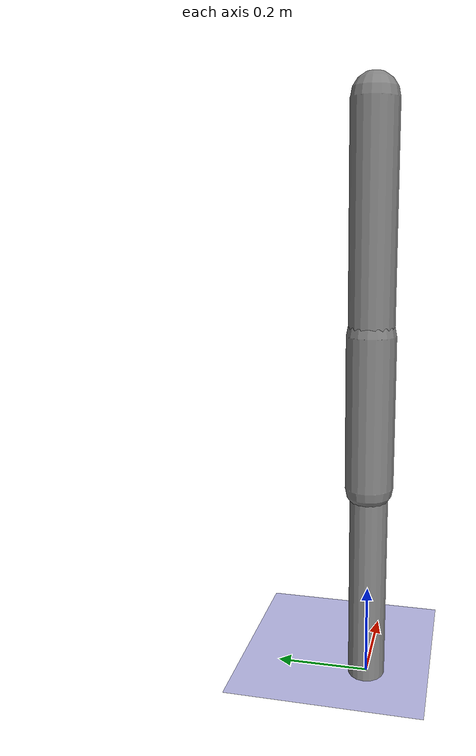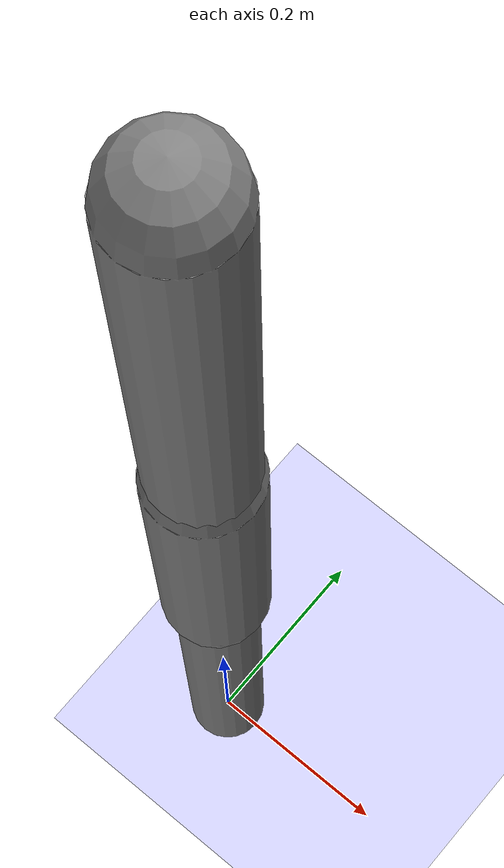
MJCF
<?xml version='1.0' encoding='UTF-8'?>
<mujoco model="robot_model">
  <worldbody>
    <light name="light" pos="0 -3 10" dir="0 0.5 -1" diffuse=".8 .8 .8" specular="0.1 0.1 0.1"/>
    <geom name="floor" type="plane" size="10.0 10.0 0.1" pos="0 0 0" rgba="0.8 0.8 1 1" contype="2" conaffinity="1"/>
    <body name="limb0" pos="0 0 0">
      <geom type="capsule" fromto="0 0 0 0 0 0.5802549618983391" size="0.04" density="803.9542594495575" contype="1" conaffinity="2"/>
      <site type="sphere" size="0.01" name="limb0_site0" pos="0 0 0.3347535224752873"/>
      <freejoint name="limb0_root"/>
      <body name="limb1" pos="0 0 0.3347535224752873">
        <geom type="capsule" fromto="0 0 0 0 0 0.2639757366326131" size="0.03303782304059255" density="616.6153958948047" contype="1" conaffinity="2"/>
        <site type="sphere" size="0.01" name="limb1_site0" pos="0 0 0.10105994540977413"/>
        <site type="sphere" size="0.01" name="limb1_site1" pos="0 0 0.10233992260081981"/>
        <body name="limb2" pos="0 0 0.10105994540977413">
          <geom type="capsule" fromto="0 0 0 0 0 0.3142270466105088" size="0.05027037047097052" density="884.6335299250863" contype="1" conaffinity="2"/>
          <site type="sphere" size="0.01" name="limb2_site0" pos="0 0 0.31407035800293537"/>
          <site type="sphere" size="0.01" name="limb2_site1" pos="0 0 0.1244647876466998"/>
          <body name="limb3" pos="0 0 0.31407035800293537">
            <geom type="capsule" fromto="0 0 0 0 0 0.4312614047427126" size="0.04653956301957194" density="942.6110881027255" contype="1" conaffinity="2"/>
            <joint name="joint_limb2_limb3_0" type="hinge" axis="0 1 0" range="-102.12620363364933 102.12620363364933" damping="5.0"/>
          </body>
          <body name="limb4" pos="0 0 0.1244647876466998">
            <geom type="capsule" fromto="0 0 0 0 0 0.36676537835349476" size="0.037605996818648096" density="900.064348310711" contype="1" conaffinity="2"/>
            <joint name="joint_limb2_limb4_0" type="hinge" axis="0 1 0" range="-118.99053825008444 118.99053825008444" damping="5.0"/>
          </body>
          <joint name="joint_limb1_limb2_0" type="hinge" axis="0 1 0" range="-81.36051586401729 81.36051586401729" damping="5.0"/>
        </body>
        <body name="limb5" pos="0 0 0.10233992260081981">
          <geom type="capsule" fromto="0 0 0 0 0 0.36543612671232706" size="0.043165968210372836" density="979.2557177933644" contype="1" conaffinity="2"/>
          <joint name="joint_limb1_limb5_0" type="hinge" axis="0 1 0" range="-116.40588747094725 116.40588747094725" damping="5.0"/>
        </body>
        <joint name="joint_limb0_limb1_0" type="hinge" axis="0 1 0" range="-69.77766919146987 69.77766919146987" damping="5.0"/>
      </body>
    </body>
  </worldbody>
  <actuator>
    <position name="position_actuator_joint_limb0_limb1_0" joint="joint_limb0_limb1_0" gear="1.316329351169531" inheritrange="1" kp="10.0"/>
    <position name="position_actuator_joint_limb1_limb2_0" joint="joint_limb1_limb2_0" gear="2.0" inheritrange="1" kp="10.0"/>
    <position name="position_actuator_joint_limb2_limb3_0" joint="joint_limb2_limb3_0" gear="1.5858762083406583" inheritrange="1" kp="10.0"/>
    <position name="position_actuator_joint_limb2_limb4_0" joint="joint_limb2_limb4_0" gear="1.5131639501074796" inheritrange="1" kp="10.0"/>
    <position name="position_actuator_joint_limb1_limb5_0" joint="joint_limb1_limb5_0" gear="0.5841662555918476" inheritrange="1" kp="10.0"/>
  </actuator>
</mujoco>
